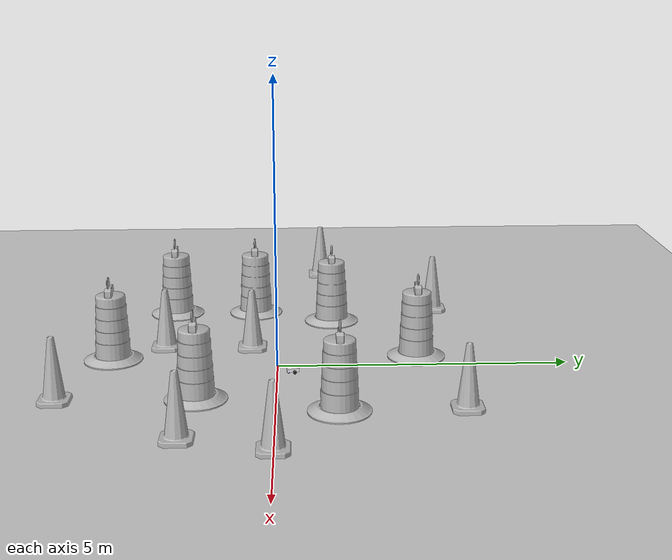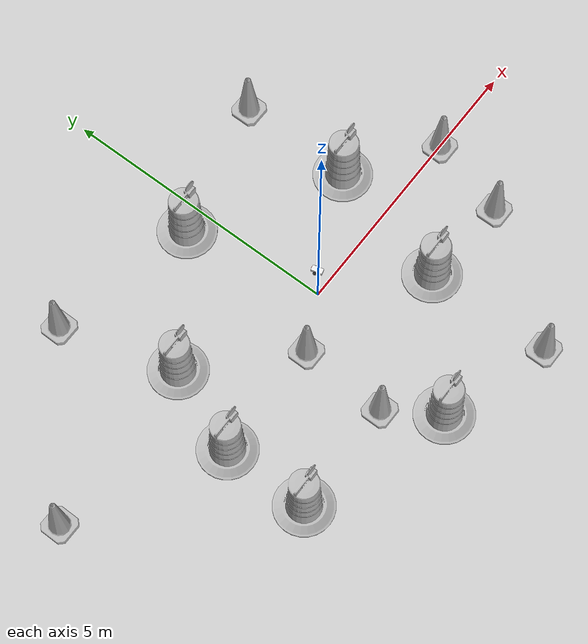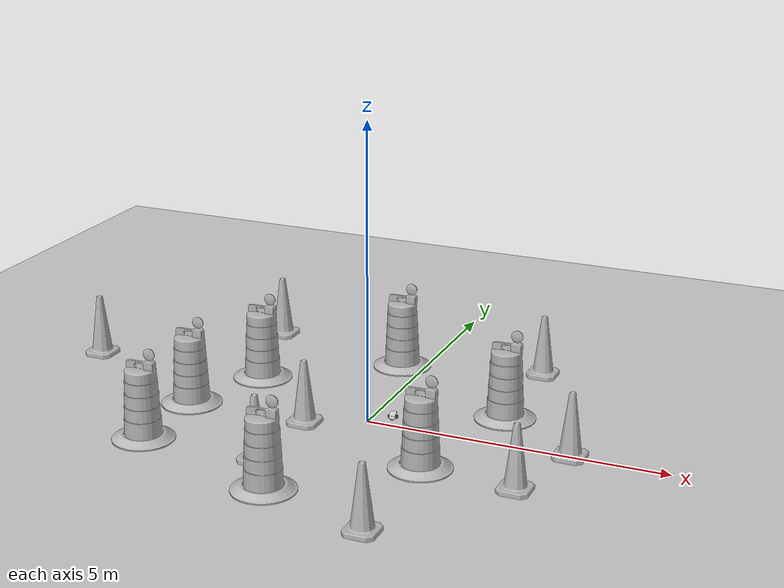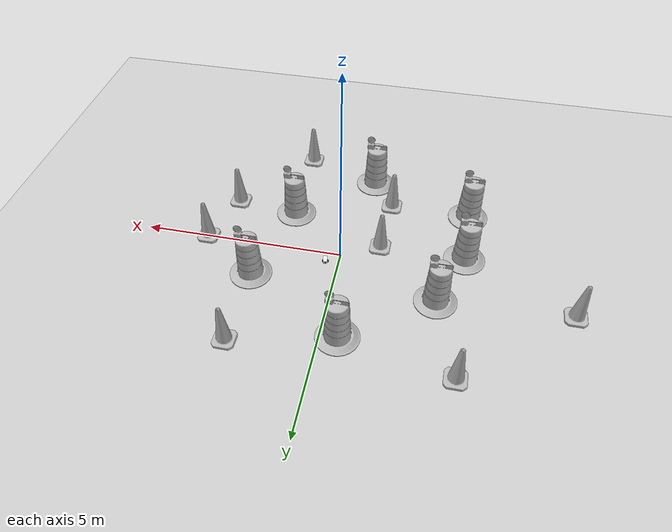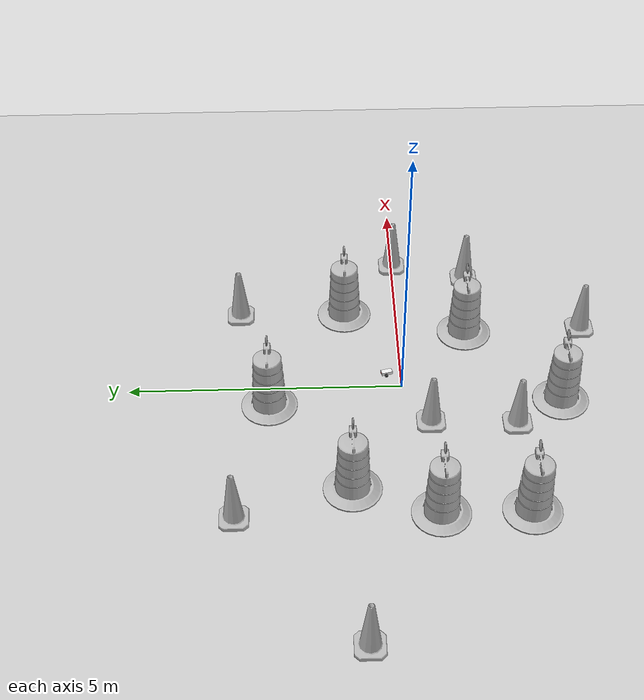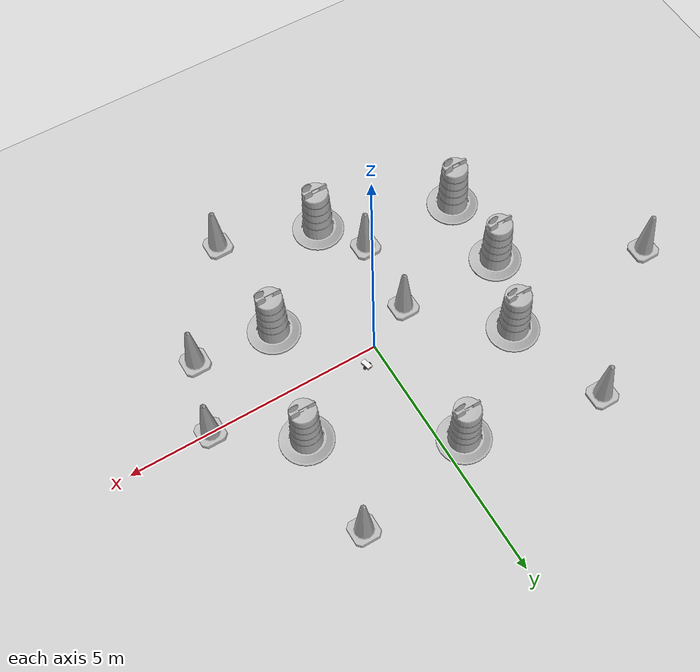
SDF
<sdf version="1.7">
 <world name="default">
  <light name="sun" type="directional">
   <pose>0 0 10 0 -0 0</pose>
   <diffuse>0.8 0.8 0.8 1</diffuse>
   <specular>0.2 0.2 0.2 1</specular>
   <attenuation>
    <range>1000</range>
    <constant>0.9</constant>
    <linear>0.01</linear>
    <quadratic>0.001</quadratic>
   </attenuation>
   <direction>-0.5 0.1 -0.9</direction>
   <spot><inner_angle>0</inner_angle><outer_angle>0</outer_angle><falloff>0</falloff></spot>
  </light>
  <model name="ground_plane">
   <static>1</static>
   <link name="link">
    <collision name="collision">
     <geometry><plane><normal>0 0 1</normal><size>100 100</size></plane></geometry>
     <surface>
      <contact><collide_bitmask>65535</collide_bitmask></contact>
      <friction><ode><mu>100</mu><mu2>50</mu2></ode></friction>
     </surface>
    </collision>
    <visual name="visual">
     <cast_shadows>0</cast_shadows>
     <geometry><plane><normal>0 0 1</normal><size>100 100</size></plane></geometry>
     <material>
      <script><uri>file://media/materials/scripts/gazebo.material</uri><name>Gazebo/Grey</name></script>
     </material>
    </visual>
   </link>
  </model>
  <gravity>0 0 -9.8</gravity>
  <magnetic_field>6e-06 2.3e-05 -4.2e-05</magnetic_field>
  <atmosphere type="adiabatic"/>
  <physics type="ode">
   <max_step_size>0.001</max_step_size>
   <real_time_factor>1</real_time_factor>
   <real_time_update_rate>1000</real_time_update_rate>
  </physics>
  <scene><ambient>0.4 0.4 0.4 1</ambient><background>0.7 0.7 0.7 1</background><shadows>1</shadows></scene>
  <spherical_coordinates>
   <surface_model>EARTH_WGS84</surface_model>
   <latitude_deg>0</latitude_deg>
   <longitude_deg>0</longitude_deg>
   <elevation>0</elevation>
   <heading_deg>0</heading_deg>
  </spherical_coordinates>
  <model name="with_robot">
   <link name="base_link">
    <inertial>
     <pose>-0.031667 0 0.025 0 -0 0</pose>
     <mass>0.6</mass>
     <inertia>
      <ixx>0.000677667</ixx>
      <ixy>0</ixy>
      <ixz>-0.000175</ixz>
      <iyy>0.002336</iyy>
      <iyz>0</iyz>
      <izz>0.00252767</izz>
     </inertia>
    </inertial>
    <collision name="base_link_fixed_joint_lump__body_collision">
     <pose>-0.02 0 0.03 0 -0 0</pose>
     <geometry><box><size>0.2 0.1 0.06</size></box></geometry>
    </collision>
    <collision name="base_link_fixed_joint_lump__camera_link_collision_1">
     <pose>0.08 0 0.03 0 -0 0</pose>
     <geometry><box><size>0.01 0.03 0.03</size></box></geometry>
    </collision>
    <collision name="base_link_fixed_joint_lump__caster_wheel_collision_2">
     <pose>-0.09 0 0 0 -0 0</pose>
     <geometry><sphere><radius>0.03</radius></sphere></geometry>
     <surface><friction><ode><mu>0.001</mu><mu2>0.001</mu2></ode></friction></surface>
    </collision>
    <visual name="base_link_fixed_joint_lump__body_visual">
     <pose>-0.02 0 0.03 0 -0 0</pose>
     <geometry><box><size>0.2 0.1 0.06</size></box></geometry>
     <material>
      <script><name>Gazebo/White</name><uri>file://media/materials/scripts/gazebo.material</uri></script>
     </material>
    </visual>
    <visual name="base_link_fixed_joint_lump__camera_link_visual_1">
     <pose>0.08 0 0.03 0 -0 0</pose>
     <geometry><box><size>0.01 0.03 0.03</size></box></geometry>
     <material>
      <script><name>Gazebo/Red</name><uri>file://media/materials/scripts/gazebo.material</uri></script>
     </material>
    </visual>
    <visual name="base_link_fixed_joint_lump__caster_wheel_visual_2">
     <pose>-0.09 0 0 0 -0 0</pose>
     <geometry><sphere><radius>0.03</radius></sphere></geometry>
     <material>
      <script><name>Gazebo/Blue</name><uri>file://media/materials/scripts/gazebo.material</uri></script>
     </material>
    </visual>
    <sensor name="camera" type="depth">
     <visualize>1</visualize>
     <update_rate>10</update_rate>
     <camera>
      <horizontal_fov>1.089</horizontal_fov>
      <image><format>B8G8R8</format><width>640</width><height>480</height></image>
      <clip><near>0.05</near><far>8</far></clip>
     </camera>
     <plugin name="camera_controller" filename="libgazebo_ros_camera.so">
      <frame_name>camera_link_optical</frame_name>
      <min_depth>0.1</min_depth>
      <max_depth>100.0</max_depth>
     </plugin>
     <pose>0.08 0 0.03 0 -0 0</pose>
    </sensor>
   </link>
   <joint name="left_wheel_joint" type="revolute">
    <pose relative_to="base_link">0 0.065 0 -1.5708 0 0</pose>
    <parent>base_link</parent>
    <child>left_wheel</child>
    <axis>
     <xyz>0 0 1</xyz>
     <limit><lower>-1e+16</lower><upper>1e+16</upper></limit>
     <dynamics><spring_reference>0</spring_reference><spring_stiffness>0</spring_stiffness></dynamics>
    </axis>
   </joint>
   <link name="left_wheel">
    <pose relative_to="left_wheel_joint">0 0 0 0 -0 0</pose>
    <inertial>
     <mass>0.1</mass>
     <inertia><ixx>3e-05</ixx><ixy>0</ixy><ixz>0</ixz><iyy>3e-05</iyy><iyz>0</iyz><izz>4.5e-05</izz></inertia>
    </inertial>
    <collision name="left_wheel_collision">
     <geometry><cylinder><length>0.03</length><radius>0.03</radius></cylinder></geometry>
    </collision>
    <visual name="left_wheel_visual">
     <geometry><cylinder><length>0.03</length><radius>0.03</radius></cylinder></geometry>
     <material>
      <script><name>Gazebo/Black</name><uri>file://media/materials/scripts/gazebo.material</uri></script>
     </material>
    </visual>
   </link>
   <joint name="right_wheel_joint" type="revolute">
    <pose relative_to="base_link">0 -0.065 0 1.5708 -0 0</pose>
    <parent>base_link</parent>
    <child>right_wheel</child>
    <axis>
     <xyz>0 0 -1</xyz>
     <limit><lower>-1e+16</lower><upper>1e+16</upper></limit>
     <dynamics><spring_reference>0</spring_reference><spring_stiffness>0</spring_stiffness></dynamics>
    </axis>
   </joint>
   <link name="right_wheel">
    <pose relative_to="right_wheel_joint">0 0 0 0 -0 0</pose>
    <inertial>
     <mass>0.1</mass>
     <inertia><ixx>3e-05</ixx><ixy>0</ixy><ixz>0</ixz><iyy>3e-05</iyy><iyz>0</iyz><izz>4.5e-05</izz></inertia>
    </inertial>
    <collision name="right_wheel_collision">
     <geometry><cylinder><length>0.03</length><radius>0.03</radius></cylinder></geometry>
    </collision>
    <visual name="right_wheel_visual">
     <geometry><cylinder><length>0.03</length><radius>0.03</radius></cylinder></geometry>
     <material>
      <script><name>Gazebo/Black</name><uri>file://media/materials/scripts/gazebo.material</uri></script>
     </material>
    </visual>
   </link>
   <plugin name="diff_drive" filename="libgazebo_ros_diff_drive.so">
    <left_joint>left_wheel_joint</left_joint>
    <right_joint>right_wheel_joint</right_joint>
    <wheel_separation>0.35</wheel_separation>
    <wheel_diameter>0.1</wheel_diameter>
    <max_wheel_torque>200</max_wheel_torque>
    <max_wheel_acceleration>10.0</max_wheel_acceleration>
    <odometry_frame>odom</odometry_frame>
    <robot_base_frame>base_link</robot_base_frame>
    <publish_odom>1</publish_odom>
    <publish_odom_tf>1</publish_odom_tf>
    <publish_wheel_tf>1</publish_wheel_tf>
   </plugin>
   <frame name="camera_optical_joint" attached_to="camera_link"><pose>0 0 0 -1.5708 -0 -1.5708</pose></frame>
   <frame name="camera_link_optical" attached_to="camera_optical_joint"/>
   <frame name="camera_joint" attached_to="body"><pose>0.2 0 0.03 0 -0 0</pose></frame>
   <frame name="camera_link" attached_to="camera_joint"/>
   <frame name="caster_wheel_joint" attached_to="body"><pose>0.03 0 0 0 -0 0</pose></frame>
   <frame name="caster_wheel" attached_to="caster_wheel_joint"/>
   <frame name="body_joint" attached_to="base_link"><pose>-0.12 0 0 0 -0 0</pose></frame>
   <frame name="body" attached_to="body_joint"/>
   <pose>0.322502 0.286237 0.03 -0 -2.3e-05 1.81022</pose>
  </model>
  <model name="Construction Barrel">
   <link name="link">
    <inertial>
     <pose>0 0 0.4 0 -0 0</pose>
     <mass>500</mass>
     <inertia><ixx>51.2096</ixx><iyy>51.2096</iyy><izz>25</izz><ixy>0</ixy><ixz>0</ixz><iyz>0</iyz></inertia>
    </inertial>
    <collision name="collision">
     <geometry><mesh><uri>model://construction_barrel/meshes/construction_barrel.dae</uri></mesh></geometry>
    </collision>
    <visual name="visual">
     <geometry><mesh><uri>model://construction_barrel/meshes/construction_barrel.dae</uri></mesh></geometry>
    </visual>
   </link>
   <pose>-0.422675 -2.86076 -2e-06 4e-06 9e-06 -1.5e-05</pose>
  </model>
  <model name="Construction Barrel_clone">
   <link name="link">
    <inertial>
     <pose>0 0 0.4 0 -0 0</pose>
     <mass>500</mass>
     <inertia><ixx>51.2096</ixx><iyy>51.2096</iyy><izz>25</izz><ixy>0</ixy><ixz>0</ixz><iyz>0</iyz></inertia>
    </inertial>
    <collision name="collision">
     <geometry><mesh><uri>model://construction_barrel/meshes/construction_barrel.dae</uri></mesh></geometry>
    </collision>
    <visual name="visual">
     <geometry><mesh><uri>model://construction_barrel/meshes/construction_barrel.dae</uri></mesh></geometry>
    </visual>
   </link>
   <pose>1.43207 -1.27012 -2e-06 7e-06 -2e-06 -1.5e-05</pose>
  </model>
  <model name="Construction Barrel_clone_0">
   <link name="link">
    <inertial>
     <pose>0 0 0.4 0 -0 0</pose>
     <mass>500</mass>
     <inertia><ixx>51.2096</ixx><iyy>51.2096</iyy><izz>25</izz><ixy>0</ixy><ixz>0</ixz><iyz>0</iyz></inertia>
    </inertial>
    <collision name="collision">
     <geometry><mesh><uri>model://construction_barrel/meshes/construction_barrel.dae</uri></mesh></geometry>
    </collision>
    <visual name="visual">
     <geometry><mesh><uri>model://construction_barrel/meshes/construction_barrel.dae</uri></mesh></geometry>
    </visual>
   </link>
   <pose>1.99994 0.999979 -2e-06 4e-06 9e-06 -1.4e-05</pose>
  </model>
  <model name="Construction Barrel_clone_1">
   <link name="link">
    <inertial>
     <pose>0 0 0.4 0 -0 0</pose>
     <mass>500</mass>
     <inertia><ixx>51.2096</ixx><iyy>51.2096</iyy><izz>25</izz><ixy>0</ixy><ixz>0</ixz><iyz>0</iyz></inertia>
    </inertial>
    <collision name="collision">
     <geometry><mesh><uri>model://construction_barrel/meshes/construction_barrel.dae</uri></mesh></geometry>
    </collision>
    <visual name="visual">
     <geometry><mesh><uri>model://construction_barrel/meshes/construction_barrel.dae</uri></mesh></geometry>
    </visual>
   </link>
   <pose>-0.409024 2.43099 -3e-06 -6e-06 -5e-06 -1.2e-05</pose>
  </model>
  <model name="Construction Barrel_clone_2">
   <link name="link">
    <inertial>
     <pose>0 0 0.4 0 -0 0</pose>
     <mass>500</mass>
     <inertia><ixx>51.2096</ixx><iyy>51.2096</iyy><izz>25</izz><ixy>0</ixy><ixz>0</ixz><iyz>0</iyz></inertia>
    </inertial>
    <collision name="collision">
     <geometry><mesh><uri>model://construction_barrel/meshes/construction_barrel.dae</uri></mesh></geometry>
    </collision>
    <visual name="visual">
     <geometry><mesh><uri>model://construction_barrel/meshes/construction_barrel.dae</uri></mesh></geometry>
    </visual>
   </link>
   <pose>-2.42839 0.999982 -1e-06 1e-06 -1e-06 -1.8e-05</pose>
  </model>
  <model name="Construction Barrel_clone_3">
   <link name="link">
    <inertial>
     <pose>0 0 0.4 0 -0 0</pose>
     <mass>500</mass>
     <inertia><ixx>51.2096</ixx><iyy>51.2096</iyy><izz>25</izz><ixy>0</ixy><ixz>0</ixz><iyz>0</iyz></inertia>
    </inertial>
    <collision name="collision">
     <geometry><mesh><uri>model://construction_barrel/meshes/construction_barrel.dae</uri></mesh></geometry>
    </collision>
    <visual name="visual">
     <geometry><mesh><uri>model://construction_barrel/meshes/construction_barrel.dae</uri></mesh></geometry>
    </visual>
   </link>
   <pose>-3.00006 -2.00002 -5e-06 -9e-06 -9e-06 -1.5e-05</pose>
  </model>
  <model name="Construction Barrel_clone_4">
   <link name="link">
    <inertial>
     <pose>0 0 0.4 0 -0 0</pose>
     <mass>500</mass>
     <inertia><ixx>51.2096</ixx><iyy>51.2096</iyy><izz>25</izz><ixy>0</ixy><ixz>0</ixz><iyz>0</iyz></inertia>
    </inertial>
    <collision name="collision">
     <geometry><mesh><uri>model://construction_barrel/meshes/construction_barrel.dae</uri></mesh></geometry>
    </collision>
    <visual name="visual">
     <geometry><mesh><uri>model://construction_barrel/meshes/construction_barrel.dae</uri></mesh></geometry>
    </visual>
   </link>
   <pose>-3.00007 -0.465488 -5e-06 -9e-06 -9e-06 -1.6e-05</pose>
  </model>
  <model name="Construction Cone">
   <link name="link">
    <collision name="collision">
     <geometry>
      <mesh><scale>10 10 10</scale><uri>model://construction_cone/meshes/construction_cone.dae</uri></mesh>
     </geometry>
    </collision>
    <visual name="visual">
     <geometry>
      <mesh><scale>10 10 10</scale><uri>model://construction_cone/meshes/construction_cone.dae</uri></mesh>
     </geometry>
    </visual>
    <inertial>
     <inertia><ixx>1</ixx><ixy>0</ixy><ixz>0</ixz><iyy>1</iyy><iyz>0</iyz><izz>1</izz></inertia>
     <mass>1</mass>
    </inertial>
   </link>
   <pose>1.45602 -3.49869 -0 0 -0 0</pose>
  </model>
  <model name="Construction Cone_clone">
   <link name="link">
    <collision name="collision">
     <geometry>
      <mesh><scale>10 10 10</scale><uri>model://construction_cone/meshes/construction_cone.dae</uri></mesh>
     </geometry>
    </collision>
    <visual name="visual">
     <geometry>
      <mesh><scale>10 10 10</scale><uri>model://construction_cone/meshes/construction_cone.dae</uri></mesh>
     </geometry>
    </visual>
    <inertial>
     <inertia><ixx>1</ixx><ixy>0</ixy><ixz>0</ixz><iyy>1</iyy><iyz>0</iyz><izz>1</izz></inertia>
     <mass>1</mass>
    </inertial>
   </link>
   <pose>3 -1.41832 -0 0 -1e-06 0</pose>
  </model>
  <model name="Construction Cone_clone_0">
   <link name="link">
    <collision name="collision">
     <geometry>
      <mesh><scale>10 10 10</scale><uri>model://construction_cone/meshes/construction_cone.dae</uri></mesh>
     </geometry>
    </collision>
    <visual name="visual">
     <geometry>
      <mesh><scale>10 10 10</scale><uri>model://construction_cone/meshes/construction_cone.dae</uri></mesh>
     </geometry>
    </visual>
    <inertial>
     <inertia><ixx>1</ixx><ixy>0</ixy><ixz>0</ixz><iyy>1</iyy><iyz>0</iyz><izz>1</izz></inertia>
     <mass>1</mass>
    </inertial>
   </link>
   <pose>3.40935 -0 -0 0 -0 0</pose>
  </model>
  <model name="Construction Cone_clone_1">
   <link name="link">
    <collision name="collision">
     <geometry>
      <mesh><scale>10 10 10</scale><uri>model://construction_cone/meshes/construction_cone.dae</uri></mesh>
     </geometry>
    </collision>
    <visual name="visual">
     <geometry>
      <mesh><scale>10 10 10</scale><uri>model://construction_cone/meshes/construction_cone.dae</uri></mesh>
     </geometry>
    </visual>
    <inertial>
     <inertia><ixx>1</ixx><ixy>0</ixy><ixz>0</ixz><iyy>1</iyy><iyz>0</iyz><izz>1</izz></inertia>
     <mass>1</mass>
    </inertial>
   </link>
   <pose>2 3 -0 0 -1e-06 0</pose>
  </model>
  <model name="Construction Cone_clone_2">
   <link name="link">
    <collision name="collision">
     <geometry>
      <mesh><scale>10 10 10</scale><uri>model://construction_cone/meshes/construction_cone.dae</uri></mesh>
     </geometry>
    </collision>
    <visual name="visual">
     <geometry>
      <mesh><scale>10 10 10</scale><uri>model://construction_cone/meshes/construction_cone.dae</uri></mesh>
     </geometry>
    </visual>
    <inertial>
     <inertia><ixx>1</ixx><ixy>0</ixy><ixz>0</ixz><iyy>1</iyy><iyz>0</iyz><izz>1</izz></inertia>
     <mass>1</mass>
    </inertial>
   </link>
   <pose>-3.0313 3.0016 -0 0 -0 0</pose>
  </model>
  <model name="Construction Cone_clone_3">
   <link name="link">
    <collision name="collision">
     <geometry>
      <mesh><scale>10 10 10</scale><uri>model://construction_cone/meshes/construction_cone.dae</uri></mesh>
     </geometry>
    </collision>
    <visual name="visual">
     <geometry>
      <mesh><scale>10 10 10</scale><uri>model://construction_cone/meshes/construction_cone.dae</uri></mesh>
     </geometry>
    </visual>
    <inertial>
     <inertia><ixx>1</ixx><ixy>0</ixy><ixz>0</ixz><iyy>1</iyy><iyz>0</iyz><izz>1</izz></inertia>
     <mass>1</mass>
    </inertial>
   </link>
   <pose>-5.58391 0.848648 -0 0 -0 0</pose>
  </model>
  <model name="Construction Cone_clone_4">
   <link name="link">
    <collision name="collision">
     <geometry>
      <mesh><scale>10 10 10</scale><uri>model://construction_cone/meshes/construction_cone.dae</uri></mesh>
     </geometry>
    </collision>
    <visual name="visual">
     <geometry>
      <mesh><scale>10 10 10</scale><uri>model://construction_cone/meshes/construction_cone.dae</uri></mesh>
     </geometry>
    </visual>
    <inertial>
     <inertia><ixx>1</ixx><ixy>0</ixy><ixz>0</ixz><iyy>1</iyy><iyz>0</iyz><izz>1</izz></inertia>
     <mass>1</mass>
    </inertial>
   </link>
   <pose>-0.917601 -0.458049 -0 0 -1e-06 0</pose>
  </model>
  <model name="Construction Cone_clone_5">
   <link name="link">
    <collision name="collision">
     <geometry>
      <mesh><scale>10 10 10</scale><uri>model://construction_cone/meshes/construction_cone.dae</uri></mesh>
     </geometry>
    </collision>
    <visual name="visual">
     <geometry>
      <mesh><scale>10 10 10</scale><uri>model://construction_cone/meshes/construction_cone.dae</uri></mesh>
     </geometry>
    </visual>
    <inertial>
     <inertia><ixx>1</ixx><ixy>0</ixy><ixz>0</ixz><iyy>1</iyy><iyz>0</iyz><izz>1</izz></inertia>
     <mass>1</mass>
    </inertial>
   </link>
   <pose>-1 -2 -0 0 -0 0</pose>
  </model>
 </world>
</sdf>
